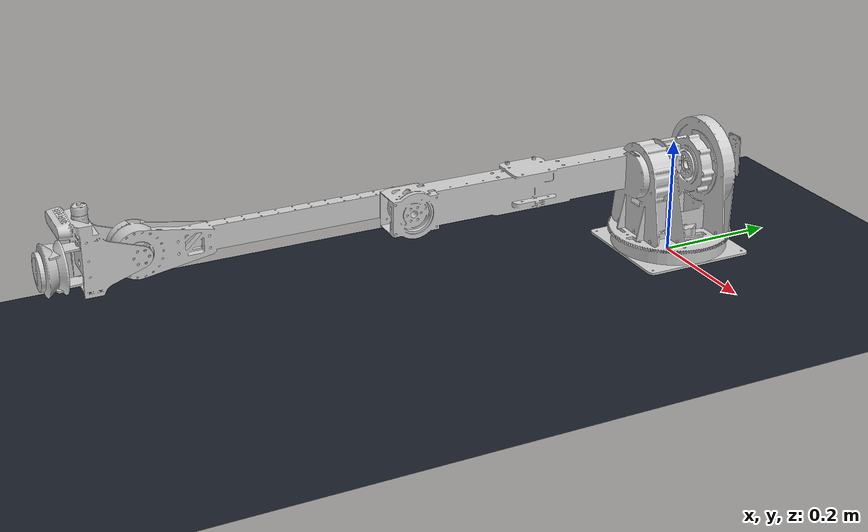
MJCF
<mujoco model="robotic_arm_phase1">
  <compiler angle="radian" meshdir="../meshes" autolimits="true"/>
  <option gravity="0 0 -9.81" timestep="0.002" integrator="implicitfast"/>

  <visual>
    <headlight ambient="0.35 0.35 0.35" diffuse="0.65 0.65 0.65" specular="0.1 0.1 0.1"/>
    <map znear="0.01"/>
  </visual>

  <default>
    <geom type="mesh" contype="0" conaffinity="0" rgba="0.82 0.82 0.82 1"/>
    <joint damping="1.0" armature="0.01"/>
  </default>

  <asset>
    <mesh name="base_link_mesh" file="base_link.STL"/>
    <mesh name="link1_mesh" file="link1.STL"/>
    <mesh name="link2_mesh" file="link2.STL"/>
    <mesh name="link3_mesh" file="link3.STL"/>
    <mesh name="link4_mesh" file="link4.STL"/>
    <mesh name="link5_mesh" file="link5.STL"/>
    <mesh name="link6_mesh" file="link6.STL"/>
  </asset>

  <worldbody>
    <light name="sun" mode="trackcom" pos="0 0 2"/>
    <camera name="overview" pos="1.3 -1.3 0.9" xyaxes="0.7 0.7 0 -0.35 0.35 0.87"/>

    <geom name="ground" type="plane" size="2 2 0.1" pos="0 0 -0.02" rgba="0.1 0.12 0.16 1" contype="1" conaffinity="1"/>

    <body name="base_link" pos="0 0 0">
      <inertial pos="-0.0091691 0.00025382 0.018962" mass="1.0998" diaginertia="0.0018714 0.0021258 0.0039568"/>
      <geom name="base_link_geom" mesh="base_link_mesh"/>

      <body name="link1" pos="0 0 0" euler="0 0 0">
        <inertial pos="7.43358623475285e-06 0.023889111022454 0.0983534461817423" mass="2.34956808405639" diaginertia="0.00573875484676502 0.0081459637209077 0.00840985861180689"/>
        <joint name="joint1" type="hinge" axis="0 0 1" range="-6.283185307 6.283185307"/>
        <geom name="link1_geom" mesh="link1_mesh"/>

        <body name="link2" pos="0 0.03675 0.153" euler="1.5708 -1.5708 0">
          <inertial pos="0.31324601008515 -0.000831742439412309 0.0364273369229759" mass="1.23727124080295" diaginertia="0.000574698570546715 0.0139530728630749 0.0142113056179225"/>
          <joint name="joint2" type="hinge" axis="0 0 1" range="-1.570796327 1.570796327"/>
          <geom name="link2_geom" mesh="link2_mesh"/>

          <body name="link3" pos="0.52 0 0.08565" euler="0 0 0">
            <inertial pos="0.271920716707995 -0.000176719212418436 -0.0120138921627069" mass="0.370266089775016" diaginertia="0.000130367133133288 0.0026767489060302 0.00278032819630172"/>
            <joint name="joint3" type="hinge" axis="0 0 1" range="-3.141592654 3.141592654"/>
            <geom name="link3_geom" mesh="link3_mesh"/>

            <body name="link4" pos="0.436 0 0.0225" euler="0 0 0">
              <inertial pos="0.101739291148925 0.0561668504993356 -0.0293841566997596" mass="1.54177209165349" diaginertia="0.000889042299025289 0.000902753866766143 0.000270000371052934"/>
              <joint name="joint4" type="hinge" axis="0 0 1" range="-3.141592654 3.141592654"/>
              <geom name="link4_geom" mesh="link4_mesh"/>

              <body name="link5" pos="0.07761 -0.0058889 -0.03035" euler="-1.5708 0 0">
                <inertial pos="0.0486576553457728 0.00239487174403753 0.00012705522061713" mass="0.0698721570199944" diaginertia="1.56377401050224e-05 1.97786334057882e-05 2.26007956299793e-05"/>
                <joint name="joint5" type="hinge" axis="0 0 1" range="-0.610865238 0.610865238"/>
                <geom name="link5_geom" mesh="link5_mesh"/>

                <body name="link6" pos="0.073796 0.0036822 8.8922e-05" euler="0 -1.5708 0">
                  <inertial pos="1.1369377661552e-14 3.51232931627976e-13 0.0193009014981094" mass="0.128099358994803" diaginertia="6.47696731838478e-05 6.47696731838478e-05 9.58412456894771e-05"/>
                  <joint name="joint6" type="hinge" axis="0 0 1" range="-3.14159 3.14159"/>
                  <geom name="link6_geom" mesh="link6_mesh"/>
                </body>
              </body>
            </body>
          </body>
        </body>
      </body>
    </body>
  </worldbody>

  <actuator>
    <position name="joint1_pos" joint="joint1" kp="1000" kv="80" ctrlrange="-6.283185307 6.283185307" forcerange="-450 450"/>
    <position name="joint2_pos" joint="joint2" kp="1000" kv="80" ctrlrange="-1.570796327 1.570796327" forcerange="-450 450"/>
    <position name="joint3_pos" joint="joint3" kp="1000" kv="80" ctrlrange="-3.141592654 3.141592654" forcerange="-450 450"/>
    <position name="joint4_pos" joint="joint4" kp="1000" kv="80" ctrlrange="-3.141592654 3.141592654" forcerange="-450 450"/>
    <position name="joint5_pos" joint="joint5" kp="1000" kv="80" ctrlrange="-0.610865238 0.610865238" forcerange="-450 450"/>
    <position name="joint6_pos" joint="joint6" kp="1000" kv="80" ctrlrange="-3.14159 3.14159" forcerange="-450 450"/>
  </actuator>

  <keyframe>
    <key name="home" qpos="0 0 0 0 0 0"/>
  </keyframe>
</mujoco>
